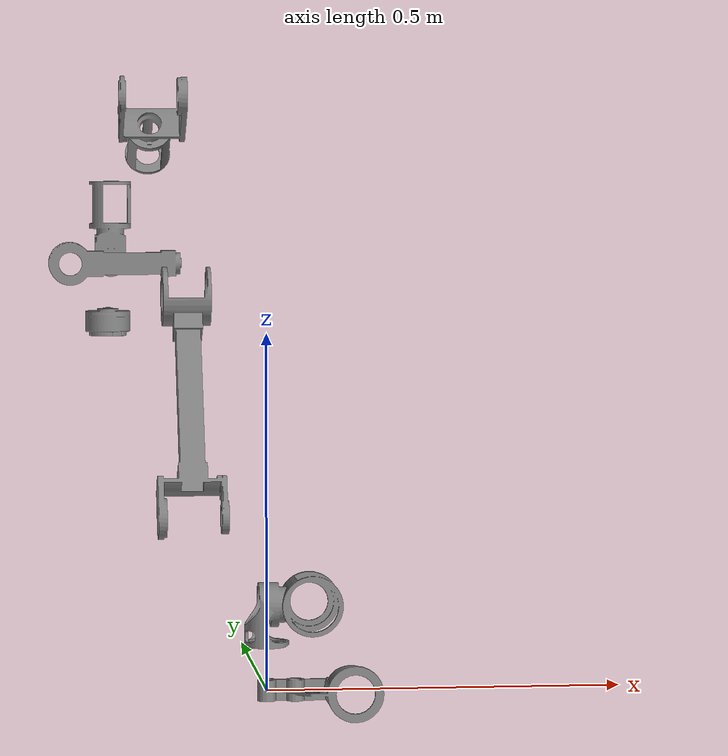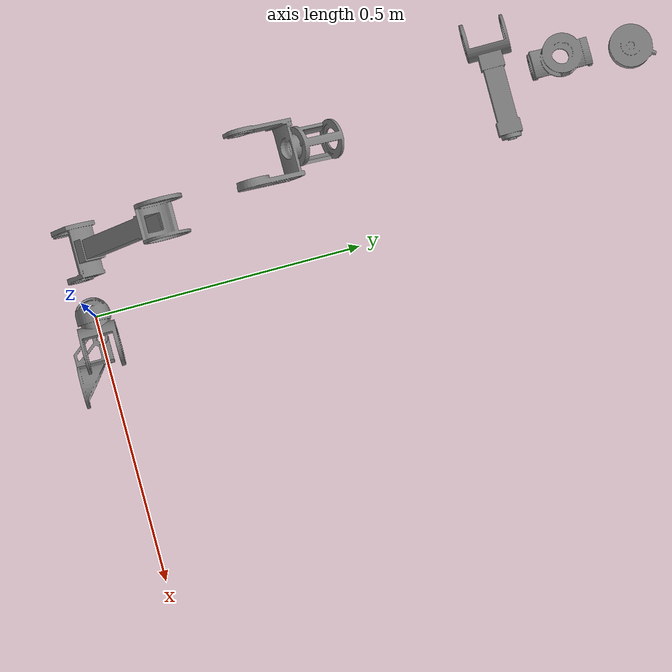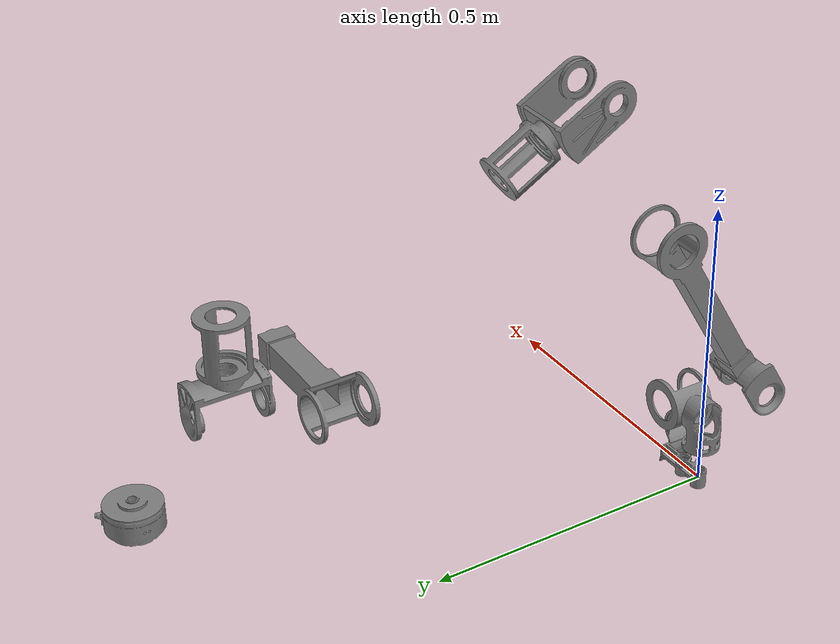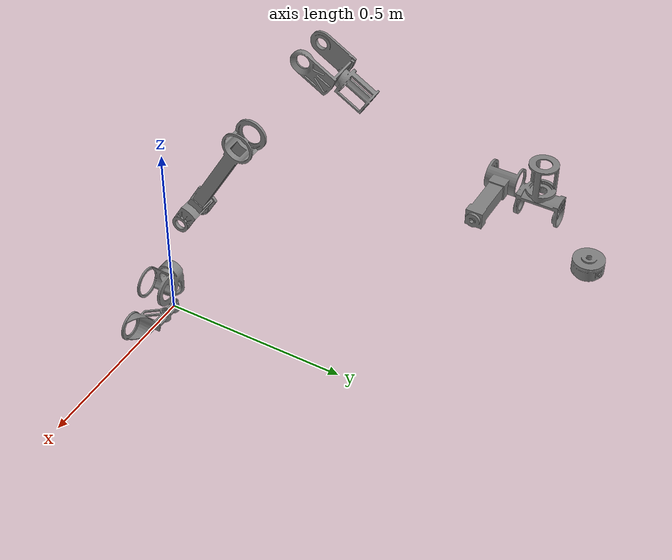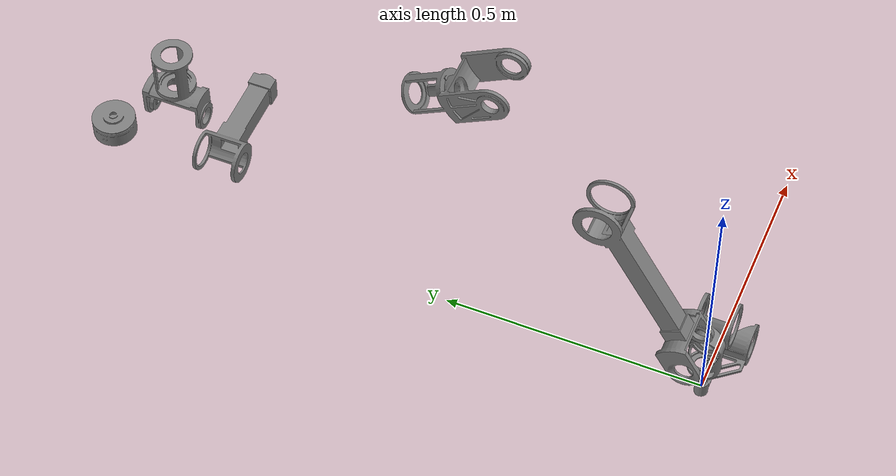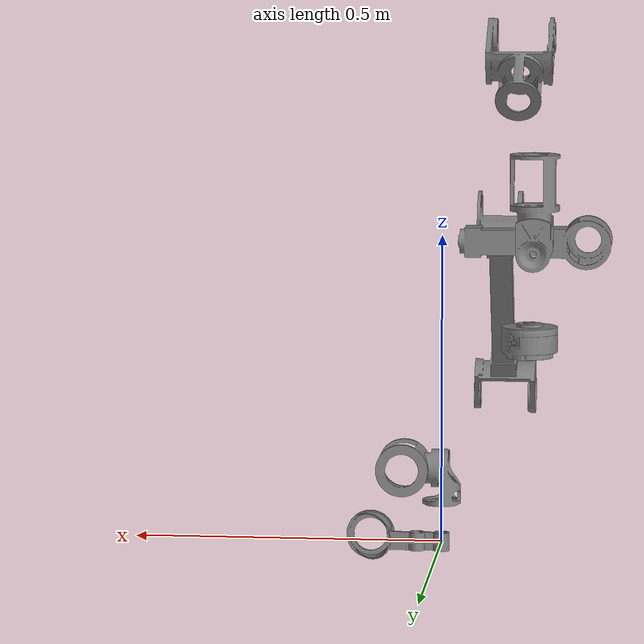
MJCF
<?xml version="1.0" ?>
<mujoco model="r6_2f_proto1">
  <compiler angle="radian" />

  <option integrator="implicitfast">
    <flag multiccd="enable" />
  </option>

  <asset>
    <mesh name="link_0" file="link_0.stl" />
    <mesh name="link_1" file="link_1.stl" />
    <mesh name="link_2" file="link_2.stl" />
    <mesh name="link_3" file="link_3.stl" />
    <mesh name="link_4" file="link_4.stl" />
    <mesh name="link_5" file="link_5.stl" />
    <mesh name="link_6" file="link_6.stl" />
  </asset>

  <actuator>
    <position
      joint="joint_1"
      name="joint_1"
      ctrlrange="-3.14 3.14"
      kp="1000"
      forcelimited="false"
      dampratio="1"
    />
    <position
      joint="joint_2"
      name="joint_2"
      ctrlrange="-3.14 3.14"
      kp="1000"
      forcelimited="false"
      dampratio="1"
    />
    <position
      joint="joint_3"
      name="joint_3"
      ctrlrange="-3.14 3.14"
      kp="1000"
      forcelimited="false"
      dampratio="1"
    />
    <position
      joint="joint_4"
      name="joint_4"
      ctrlrange="-3.14 3.14"
      kp="1000"
      forcelimited="false"
      dampratio="1"
    />
    <position
      joint="joint_5"
      name="joint_5"
      ctrlrange="-3.14 3.14"
      kp="1000"
      forcelimited="false"
      dampratio="1"
    />
    <position
      joint="joint_6"
      name="joint_6"
      ctrlrange="-3.14 3.14"
      kp="1000"
      forcelimited="false"
      dampratio="1"
    />
  </actuator>
  <worldbody>
    <body name="base_link" gravcomp="1">
      <geom
        type="mesh"
        contype="0"
        conaffinity="0"
        group="1"
        density="0"
        mesh="link_0"
        name="link_0"
      />
      <geom type="mesh" mesh="link_0" name="link_02" />
      <body name="link_1" pos="0 0 0.061584" gravcomp="1">
        <joint
          name="joint_1"
          pos="0 0 0"
          axis="0 0 1"
          range="-3.14159 3.14159"
          actuatorfrcrange="-1000 1000"
        />
        <geom
          type="mesh"
          contype="0"
          conaffinity="0"
          group="1"
          density="0"
          mesh="link_1"
          name="link_1"
        />
        <geom type="mesh" mesh="link_1" name="link_12" />
        <body
          name="link_2"
          pos="-0.101717 0 0.182284"
          quat="0.683013 -0.183013 -0.683013 0.183013"
          gravcomp="1"
        >
          <joint
            name="joint_2"
            pos="0 0 0"
            axis="0 0 1"
            range="-3.14159 3.14159"
            actuatorfrcrange="-1000 1000"
          />
          <geom
            type="mesh"
            contype="0"
            conaffinity="0"
            group="1"
            density="0"
            mesh="link_2"
            name="link_2"
          />
          <geom type="mesh" mesh="link_2" name="link_22" />
          <body
            name="link_3"
            pos="0.685682 0 0.041861"
            quat="0 -0.707107 -0.707107 0"
            gravcomp="1"
          >
            <joint
              name="joint_3"
              pos="0 0 0"
              axis="0 0 1"
              range="-3.14159 3.14159"
              actuatorfrcrange="-1000 1000"
            />
            <geom
              type="mesh"
              contype="0"
              conaffinity="0"
              group="1"
              density="0"
              mesh="link_3"
              name="link_3"
            />
            <geom type="mesh" mesh="link_3" name="link_32" />
            <body
              name="link_4"
              pos="0.518777 0 0.067458"
              quat="0 -0.965926 -0.258819 0"
              gravcomp="1"
            >
              <joint
                name="joint_4"
                pos="0 0 0"
                axis="0 0 1"
                range="-3.14159 3.14159"
                actuatorfrcrange="-1000 1000"
              />
              <geom
                type="mesh"
                contype="0"
                conaffinity="0"
                group="1"
                density="0"
                mesh="link_4"
                name="link_4"
              />
              <geom type="mesh" mesh="link_4" name="link_42" />
              <body
                name="link_5"
                pos="0.112654 0 0.110903"
                quat="0.5 -0.5 0.5 -0.5"
                gravcomp="1"
              >
                <joint
                  name="joint_5"
                  pos="0 0 0"
                  axis="0 0 1"
                  range="-3.14159 3.14159"
                  actuatorfrcrange="-1000 1000"
                />
                <geom
                  type="mesh"
                  contype="0"
                  conaffinity="0"
                  group="1"
                  density="0"
                  mesh="link_5"
                  name="link_5"
                />
                <geom type="mesh" mesh="link_5" name="link_52" />
                <body
                  name="link_6"
                  pos="-0.085976 0 0.133436"
                  quat="0.707107 0 -0.707107 0"
                  gravcomp="1"
                >
                  <joint
                    name="joint_6"
                    pos="0 0 0"
                    axis="0 0 1"
                    range="-3.14159 3.14159"
                    actuatorfrcrange="-1000 1000"
                  />
                  <geom
                    type="mesh"
                    contype="0"
                    conaffinity="0"
                    group="1"
                    density="0"
                    mesh="link_6"
                    name="link_6"
                  />
                  <geom type="mesh" mesh="link_6" name="link_62" />
                  <body name="ft_frame" gravcomp="1">
                    <body name="tool0" pos="0 0 0.185" gravcomp="1" />
                  </body>
                </body>
              </body>
            </body>
          </body>
        </body>
      </body>
    </body>
  </worldbody>
  <contact>
    <exclude body1="base_link" body2="link_1" />
  </contact>
</mujoco>
